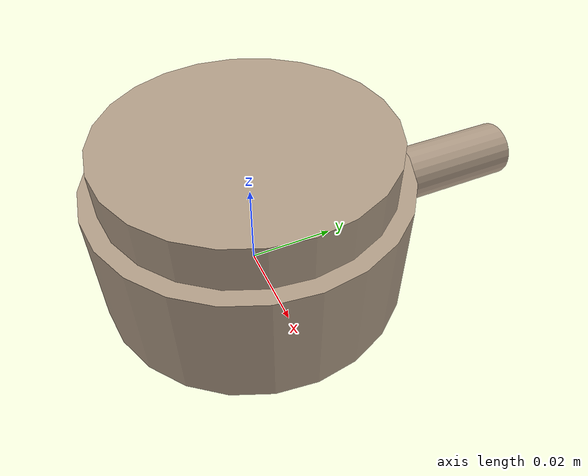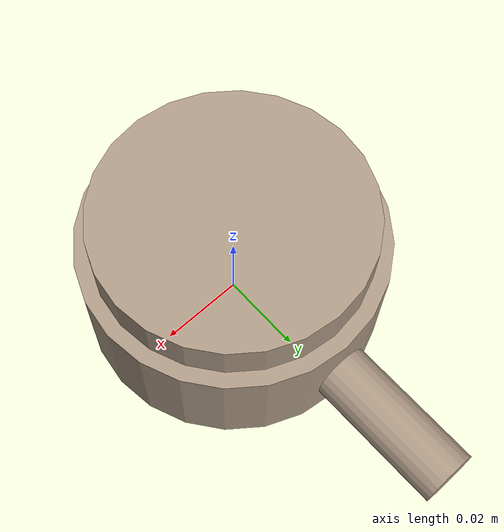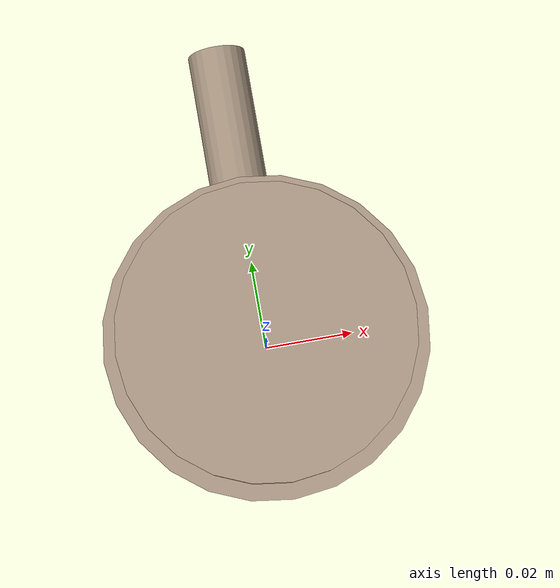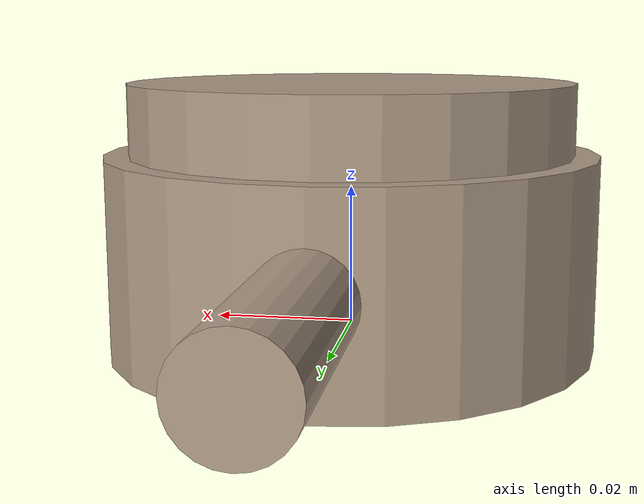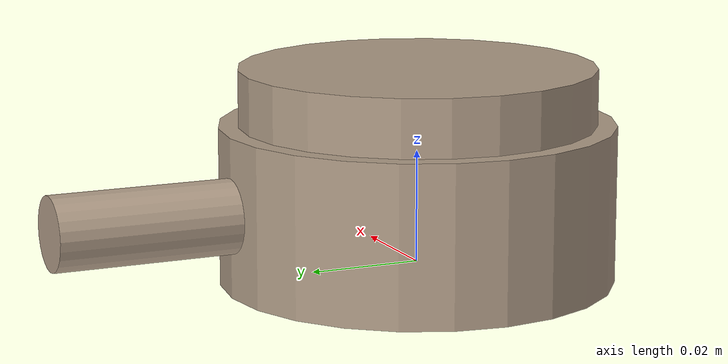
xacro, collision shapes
<?xml version="1.0"?>
<robot xmlns:xacro="http://wiki.ros.org/xacro"
       name="sensor" >

  <xacro:arg name="prefix" default="ft_sensor0"/>

  <xacro:include filename="$(find rokubimini_description)/urdf/BFT_SENS_ECAT_M8.urdf.xacro" />

  <xacro:BFT_SENS_ECAT_M8 prefix="$(arg prefix)" />

  <link name="world" />

  <joint name="world_joint" type="fixed">
    <parent link="world" />
    <child link = "$(arg prefix)_mounting" />
    <origin xyz="0.0 0.0 0.0" rpy="0.0 0.0 0.0" />
  </joint>

</robot>

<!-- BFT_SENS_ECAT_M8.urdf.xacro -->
<robot xmlns:xacro="http://wiki.ros.org/xacro">
  <xacro:macro name="BFT_SENS_ECAT_M8" params="prefix">

    <link
      name="${prefix}_mounting">
      <inertial>
        <origin
          xyz="-9.4473E-05 0.00063177 0.010132"
          rpy="0 0 0" />
        <mass
          value="0.14931" />
        <inertia
          ixx="4.8806E-05"
          ixy="3.2223E-08"
          ixz="-1.0415E-07"
          iyy="5.5473E-05"
          iyz="1.3709E-07"
          izz="8.9696E-05" />
      </inertial>
      <visual>
        <origin
          xyz="0 0 0"
          rpy="0 0 0" />
        <geometry>
          <mesh filename="package://rokubimini_description/meshes/BFT_SENS_M8/mounting.STL" />
        </geometry>
        <material
          name="">
          <color
            rgba="0.6902 0.61176 0.52941 1" />
        </material>
      </visual>
      <collision>
        <origin
          xyz="0 0 0.011"
          rpy="0 0 0" />
        <geometry>
          <cylinder radius="0.035" length="0.028"/>
        </geometry>
      </collision>
      <collision>
        <origin
          xyz="0 0.051 0.0115"
          rpy="1.57 0 0" />
        <geometry>
          <cylinder radius="0.0065" length="0.032"/>
        </geometry>
      </collision>
      <collision>
        <origin
          xyz="0 0 0.03"
          rpy="0 0 0" />
        <geometry>
          <cylinder radius="0.0315" length="0.01"/>
        </geometry>
      </collision>
    </link>

    <link
      name="${prefix}_imu">
      <inertial>
        <origin
          xyz="-7.28164825396643E-05 1.54951151759942E-05 -0.00279059266096084"
          rpy="0 0 0" />
        <mass
          value="0.00841533584597687" />
        <inertia
          ixx="4.36835040253875E-07"
          ixy="-6.98609475825204E-11"
          ixz="-6.08397676352913E-15"
          iyy="4.41035649008913E-07"
          iyz="1.1033148379698E-11"
          izz="8.74962095262403E-07" />
      </inertial>
    </link>

    <joint
      name="mounting_to_imu"
      type="fixed">
      <origin
        xyz="0 0 0.0093"
        rpy="0 0 0" />
      <parent
        link="${prefix}_mounting" />
      <child
        link="${prefix}_imu" />
      <axis
        xyz="0 0 0" />
    </joint>

    <link
      name="${prefix}_wrench">
      <inertial>
        <origin
          xyz="-1.9753E-07 0.00017443 -0.0070758"
          rpy="0 0 0" />
        <mass
          value="0.081117" />
        <inertia
          ixx="2.1858E-05"
          ixy="-1.9153E-12"
          ixz="3.7592E-11"
          iyy="2.2215E-05"
          iyz="-4.9937E-08"
          izz="4.0048E-05" />
      </inertial>
    </link>

    <joint
      name="mounting_to_wrench"
      type="fixed">
      <origin
        xyz="0 0 0.035"
        rpy="0 0 0" />
      <parent
        link="${prefix}_mounting" />
      <child
        link="${prefix}_wrench" />
      <axis
        xyz="0 0 0" />
    </joint>

    <link
      name="${prefix}_mech1">
    </link>

    <joint
      name="mounting_to_mech1"
      type="fixed">
      <origin
        xyz="-0.032879 0 0.0105"
        rpy="1.5625 0 -1.5708" />
      <parent
        link="${prefix}_mounting" />
      <child
        link="${prefix}_mech1" />
      <axis
        xyz="0 0 0" />
    </joint>

    <link
      name="${prefix}_mech2">
    </link>

    <joint
      name="mounting_to_mech2"
      type="fixed">
      <origin
        xyz="0 -0.032879 0.0105"
        rpy="1.5708 0 0" />
      <parent
        link="${prefix}_mounting" />
      <child
        link="${prefix}_mech2" />
      <axis
        xyz="0 0 0" />
    </joint>

    <link
      name="${prefix}_mech3">
    </link>

    <joint
      name="mounting_to_mech3"
      type="fixed">
      <origin
        xyz="0.032879 0 0.0105"
        rpy="1.5708 0 1.5708" />
      <parent
        link="${prefix}_mounting" />
      <child
        link="${prefix}_mech3" />
      <axis
        xyz="0 0 0" />
    </joint>

  </xacro:macro>
</robot>
